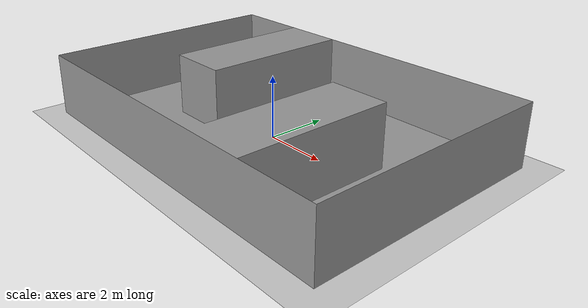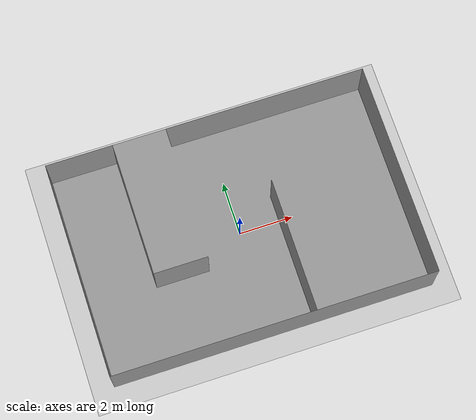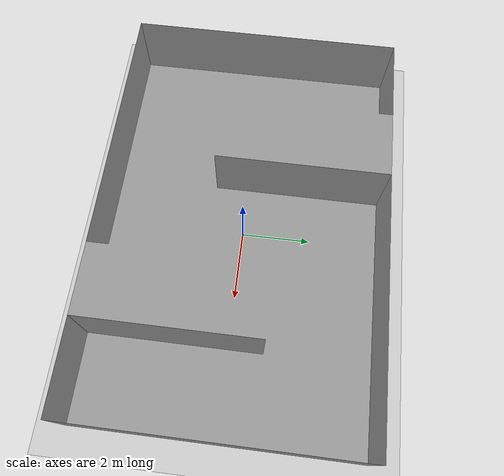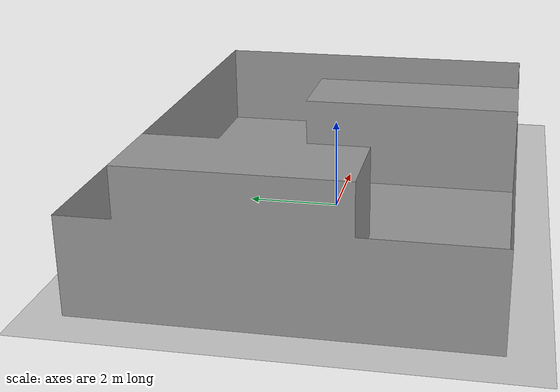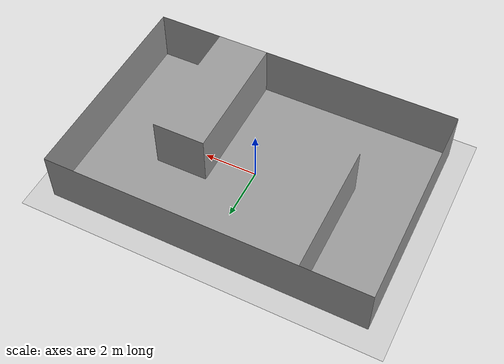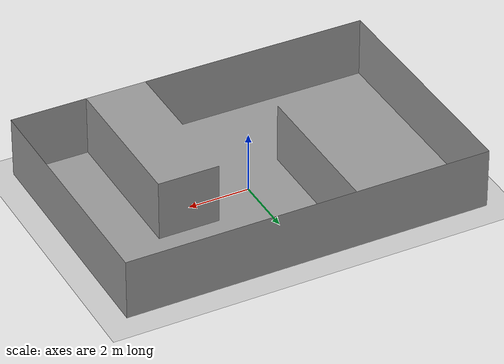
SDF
<sdf version='1.7'>
  <world name='default'>
    <model name='ground_plane'>
      <static>1</static>
      <link name='link'>
        <collision name='collision'>
          <geometry>
            <plane>
              <normal>0 0 1</normal>
              <size>100 100</size>
            </plane>
          </geometry>
          <surface>
            <contact>
              <collide_bitmask>65535</collide_bitmask>
              <ode/>
            </contact>
            <friction>
              <ode>
                <mu>100</mu>
                <mu2>50</mu2>
              </ode>
              <torsional>
                <ode/>
              </torsional>
            </friction>
            <bounce/>
          </surface>
          <max_contacts>10</max_contacts>
        </collision>
        <visual name='visual'>
          <cast_shadows>0</cast_shadows>
          <geometry>
            <plane>
              <normal>0 0 1</normal>
              <size>100 100</size>
            </plane>
          </geometry>
          <material>
            <script>
              <uri>file://media/materials/scripts/gazebo.material</uri>
              <name>Gazebo/Grey</name>
            </script>
          </material>
        </visual>
        <self_collide>0</self_collide>
        <enable_wind>0</enable_wind>
        <kinematic>0</kinematic>
      </link>
    </model>
    <gravity>0 0 -9.8</gravity>
    <magnetic_field>6e-06 2.3e-05 -4.2e-05</magnetic_field>
    <atmosphere type='adiabatic'/>
    <physics type='ode'>
      <max_step_size>0.001</max_step_size>
      <real_time_factor>1</real_time_factor>
      <real_time_update_rate>1000</real_time_update_rate>
    </physics>
    <scene>
      <ambient>0.4 0.4 0.4 1</ambient>
      <background>0.7 0.7 0.7 1</background>
      <shadows>1</shadows>
    </scene>
    <device>default</device>
    <wind/>
    <spherical_coordinates>
      <surface_model>EARTH_WGS84</surface_model>
      <latitude_deg>0</latitude_deg>
      <longitude_deg>0</longitude_deg>
      <elevation>0</elevation>
      <heading_deg>0</heading_deg>
    </spherical_coordinates>
    <model name='RMUL_2026'>
      <link name='link_3'>
        <inertial>
          <mass>1</mass>
          <inertia>
            <ixx>0.166667</ixx>
            <ixy>0</ixy>
            <ixz>0</ixz>
            <iyy>0.166667</iyy>
            <iyz>0</iyz>
            <izz>0.166667</izz>
          </inertia>
          <pose>0 0 0 0 -0 0</pose>
        </inertial>
        <pose>0 0 -3e-06 0 -0 0</pose>
        <gravity>1</gravity>
        <self_collide>0</self_collide>
        <kinematic>0</kinematic>
        <enable_wind>0</enable_wind>
        <visual name='visual'>
          <pose>0 0 0 0 0 0</pose>
          <geometry>
            <mesh>
              <uri>model://RMUL2026H_world/meshes/RMUL_2026H.stl</uri>
              <scale>1 1 1</scale>
            </mesh>
          </geometry>
          <material>
            <lighting>1</lighting>
            <script>
              <uri>file://media/materials/scripts/gazebo.material</uri>
              <name>Gazebo/Grey</name>
            </script>
            <shader type='pixel'>
              <normal_map>__default__</normal_map>
            </shader>
            <ambient>0.3 0.3 0.3 1</ambient>
            <diffuse>0.7 0.7 0.7 1</diffuse>
            <specular>0.01 0.01 0.01 1</specular>
            <emissive>0 0 0 1</emissive>
          </material>
          <transparency>0</transparency>
          <cast_shadows>1</cast_shadows>
        </visual>
        <collision name='collision'>
          <laser_retro>0</laser_retro>
          <max_contacts>10</max_contacts>
          <pose>0 0 0 0 0 0</pose>
          <geometry>
            <mesh>
              <uri>model://RMUL2026H_world/meshes/RMUL_2026H.stl</uri>
              <scale>1 1 1</scale>
            </mesh>
          </geometry>
          <surface>
            <friction>
              <ode>
                <mu>1</mu>
                <mu2>1</mu2>
                <fdir1>0 0 0</fdir1>
                <slip1>0</slip1>
                <slip2>0</slip2>
              </ode>
              <torsional>
                <coefficient>1</coefficient>
                <patch_radius>0</patch_radius>
                <surface_radius>0</surface_radius>
                <use_patch_radius>1</use_patch_radius>
                <ode>
                  <slip>0</slip>
                </ode>
              </torsional>
            </friction>
            <bounce>
              <restitution_coefficient>0</restitution_coefficient>
              <threshold>1e+06</threshold>
            </bounce>
            <contact>
              <collide_without_contact>0</collide_without_contact>
              <collide_without_contact_bitmask>1</collide_without_contact_bitmask>
              <collide_bitmask>1</collide_bitmask>
              <ode>
                <soft_cfm>0</soft_cfm>
                <soft_erp>0.2</soft_erp>
                <kp>1e+13</kp>
                <kd>1</kd>
                <max_vel>0.01</max_vel>
                <min_depth>0</min_depth>
              </ode>
              <bullet>
                <split_impulse>1</split_impulse>
                <split_impulse_penetration_threshold>-0.01</split_impulse_penetration_threshold>
                <soft_cfm>0</soft_cfm>
                <soft_erp>0.2</soft_erp>
                <kp>1e+13</kp>
                <kd>1</kd>
              </bullet>
            </contact>
          </surface>
        </collision>
      </link>
      <static>1</static>
      <allow_auto_disable>1</allow_auto_disable>
      <pose>0 0 0.001 0 0 0</pose>
    </model>

    <!-- 修改后的灯光位置 -->
    <light name='user_directional_light_0' type='directional'>
      <pose>10 5 15 0 -0 0</pose>  <!-- 远光灯从左上方照射 -->
      <diffuse>0.8 0.8 0.8 1</diffuse>
      <specular>0.2 0.2 0.2 1</specular>
      <direction>-0.5 -0.3 -1</direction>  <!-- 调整照射方向 -->
      <attenuation>
        <range>50</range>
        <constant>0.5</constant>
        <linear>0.01</linear>
        <quadratic>0.001</quadratic>
      </attenuation>
      <cast_shadows>1</cast_shadows>
    </light>

    <light name='user_point_light_0' type='point'>
      <pose>5 5 8 0 -0 0</pose>  <!-- 右上方点光源 -->
      <diffuse>0.6 0.6 0.6 1</diffuse>
      <specular>0.3 0.3 0.3 1</specular>
      <attenuation>
        <range>30</range>
        <constant>0.5</constant>
        <linear>0.02</linear>
        <quadratic>0.002</quadratic>
      </attenuation>
      <cast_shadows>1</cast_shadows>
    </light>

    <light name='user_spot_light_0' type='spot'>
      <pose>-5 5 8 0 -0 0</pose>  <!-- 左上方聚光灯 -->
      <diffuse>0.7 0.7 0.7 1</diffuse>
      <specular>0.3 0.3 0.3 1</specular>
      <direction>0.5 -0.3 -1</direction>  <!-- 调整聚光方向 -->
      <attenuation>
        <range>25</range>
        <constant>0.5</constant>
        <linear>0.02</linear>
        <quadratic>0.002</quadratic>
      </attenuation>
      <cast_shadows>1</cast_shadows>
      <spot>
        <inner_angle>0.4</inner_angle>
        <outer_angle>0.8</outer_angle>
        <falloff>1</falloff>
      </spot>
    </light>

    <light name='user_spot_light_1' type='spot'>
      <pose>5 -5 8 0 -0 0</pose>  <!-- 右下方聚光灯 -->
      <diffuse>0.7 0.7 0.7 1</diffuse>
      <specular>0.3 0.3 0.3 1</specular>
      <direction>-0.5 0.3 -1</direction>  <!-- 调整聚光方向 -->
      <attenuation>
        <range>25</range>
        <constant>0.5</constant>
        <linear>0.02</linear>
        <quadratic>0.002</quadratic>
      </attenuation>
      <cast_shadows>1</cast_shadows>
      <spot>
        <inner_angle>0.4</inner_angle>
        <outer_angle>0.8</outer_angle>
        <falloff>1</falloff>
      </spot>
    </light>

    <light name='user_spot_light_2' type='spot'>
      <pose>0 0 10 0 -0 0</pose>  <!-- 正上方聚光灯 -->
      <diffuse>0.9 0.9 0.9 1</diffuse>
      <specular>0.4 0.4 0.4 1</specular>
      <direction>0 0 -1</direction>  <!-- 垂直向下照射 -->
      <attenuation>
        <range>30</range>
        <constant>0.5</constant>
        <linear>0.01</linear>
        <quadratic>0.001</quadratic>
      </attenuation>
      <cast_shadows>1</cast_shadows>
      <spot>
        <inner_angle>0.6</inner_angle>
        <outer_angle>1.2</outer_angle>
        <falloff>1</falloff>
      </spot>
    </light>

    <gui fullscreen='0'>
      <camera name='user_camera'>
        <pose>7.46312 3.78907 13.2486 -2.7e-05 1.5698 1.56647</pose>
        <view_controller>orbit</view_controller>
        <projection_type>perspective</projection_type>
      </camera>
    </gui>
  </world>
</sdf>
